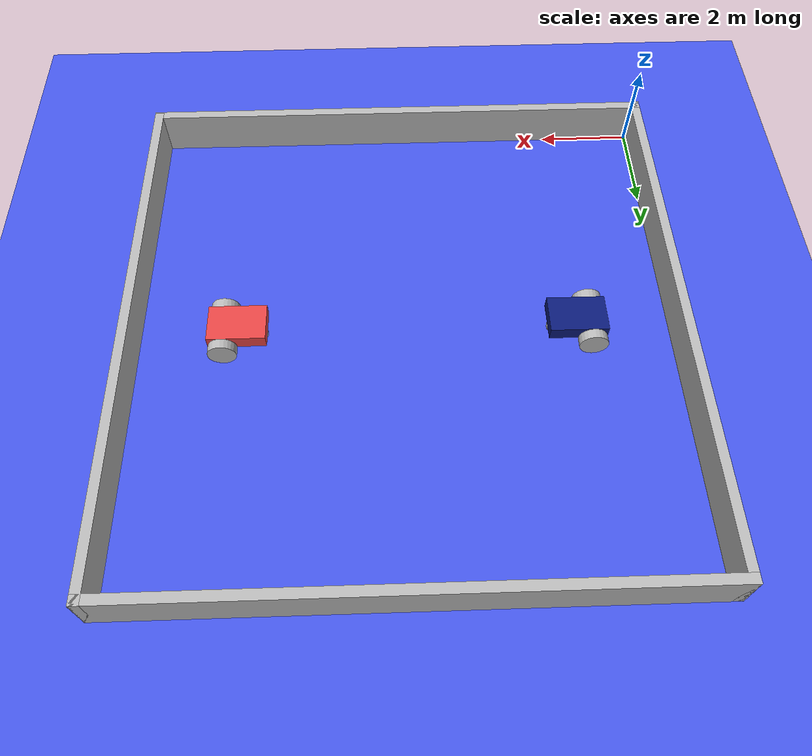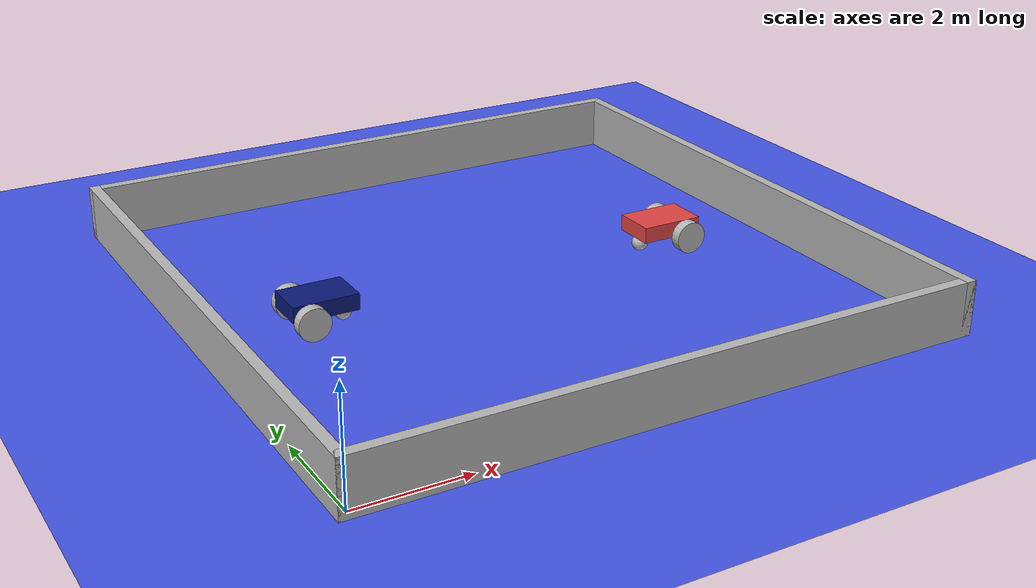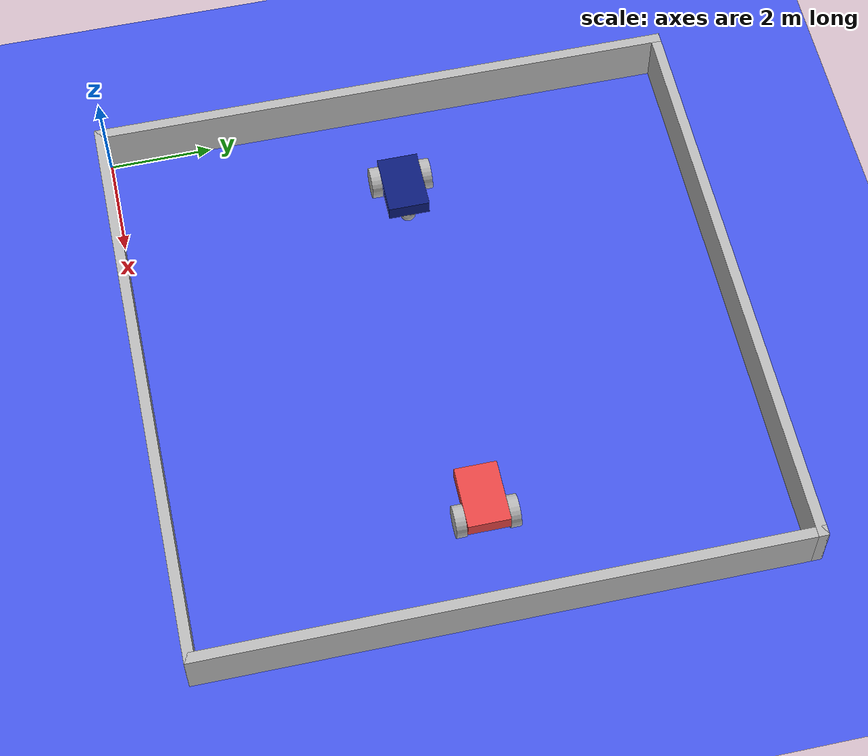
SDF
<?xml version="1.0" ?>
<sdf version="1.8">
  <world name="arena">
    <physics name="1ms" type="ignored">
      <max_step_size>0.001</max_step_size>
      <real_time_factor>1.0</real_time_factor>
    </physics>
    <plugin filename="ignition-gazebo-physics-system" name="ignition::gazebo::systems::Physics"/>
    <plugin filename="ignition-gazebo-user-commands-system" name="ignition::gazebo::systems::UserCommands"/>
    <plugin filename="ignition-gazebo-scene-broadcaster-system" name="ignition::gazebo::systems::SceneBroadcaster"/>
    <plugin filename="ignition-gazebo-contact-system" name="ignition::gazebo::systems::Contact"/>

    <light type="directional" name="sun">
      <cast_shadows>false</cast_shadows>
      <pose>0 0 10 0 0 0</pose>
      <diffuse>0.8 0.8 0.8 1</diffuse>
      <specular>0.2 0.2 0.2 1</specular>
      <direction>-0.5 0.1 -0.9</direction>
    </light>

    <model name="ground_plane">
      <static>true</static>
      <link name="link">
        <collision name="collision">
          <geometry><plane><normal>0 0 1</normal><size>40 40</size></plane></geometry>
        </collision>
        <visual name="visual">
          <geometry><plane><normal>0 0 1</normal><size>11.08 11.08</size></plane></geometry>
          <material><ambient>0.27 0.34 0.91 1</ambient><diffuse>0.27 0.34 0.91 1</diffuse></material>
        </visual>
      </link>
    </model>

    <!-- four walls around the 11.08 x 11.08 floor, centered at (5.54, 5.54) -->
    <model name="wall_south"><static>true</static><pose>5.54 -0.1 0.5 0 0 0</pose>
      <link name="link"><collision name="c"><geometry><box><size>11.48 0.2 1</size></box></geometry></collision>
      <visual name="v"><geometry><box><size>11.48 0.2 1</size></box></geometry></visual></link></model>
    <model name="wall_north"><static>true</static><pose>5.54 11.18 0.5 0 0 0</pose>
      <link name="link"><collision name="c"><geometry><box><size>11.48 0.2 1</size></box></geometry></collision>
      <visual name="v"><geometry><box><size>11.48 0.2 1</size></box></geometry></visual></link></model>
    <model name="wall_west"><static>true</static><pose>-0.1 5.54 0.5 0 0 0</pose>
      <link name="link"><collision name="c"><geometry><box><size>0.2 11.48 1</size></box></geometry></collision>
      <visual name="v"><geometry><box><size>0.2 11.48 1</size></box></geometry></visual></link></model>
    <model name="wall_east"><static>true</static><pose>11.18 5.54 0.5 0 0 0</pose>
      <link name="link"><collision name="c"><geometry><box><size>0.2 11.48 1</size></box></geometry></collision>
      <visual name="v"><geometry><box><size>0.2 11.48 1</size></box></geometry></visual></link></model>

    <!-- blue faces +x from (2, 5.54); red faces -x from (9, 5.54): they meet in the middle -->
    <model name="blue">
      <pose>2 5.54 0.3 0 0 0</pose>
      <link name="chassis">
        <pose>0 0 0.15 0 0 0</pose>
        <inertial><mass>5</mass><inertia><ixx>0.3</ixx><iyy>0.6</iyy><izz>0.8</izz><ixy>0</ixy><ixz>0</ixz><iyz>0</iyz></inertia></inertial>
        <collision name="chassis_collision"><geometry><box><size>1.2 0.8 0.3</size></box></geometry></collision>
        <visual name="chassis_visual"><geometry><box><size>1.2 0.8 0.3</size></box></geometry>
          <material><ambient>0.04 0.1 0.47 1</ambient><diffuse>0.04 0.1 0.47 1</diffuse></material></visual>
        <sensor name="bumper" type="contact">
          <contact><collision>chassis_collision</collision></contact>
          <topic>/contacts/blue</topic>
          <update_rate>10</update_rate>
          <always_on>true</always_on>
        </sensor>
      </link>
      <link name="left_wheel">
        <pose>-0.3 0.5 0 -1.5707 0 0</pose>
        <inertial><mass>1</mass><inertia><ixx>0.025</ixx><iyy>0.025</iyy><izz>0.045</izz><ixy>0</ixy><ixz>0</ixz><iyz>0</iyz></inertia></inertial>
        <collision name="collision"><geometry><cylinder><radius>0.3</radius><length>0.2</length></cylinder></geometry></collision>
        <visual name="visual"><geometry><cylinder><radius>0.3</radius><length>0.2</length></cylinder></geometry></visual>
      </link>
      <link name="right_wheel">
        <pose>-0.3 -0.5 0 -1.5707 0 0</pose>
        <inertial><mass>1</mass><inertia><ixx>0.025</ixx><iyy>0.025</iyy><izz>0.045</izz><ixy>0</ixy><ixz>0</ixz><iyz>0</iyz></inertia></inertial>
        <collision name="collision"><geometry><cylinder><radius>0.3</radius><length>0.2</length></cylinder></geometry></collision>
        <visual name="visual"><geometry><cylinder><radius>0.3</radius><length>0.2</length></cylinder></geometry></visual>
      </link>
      <link name="caster">
        <pose>0.45 0 -0.15 0 0 0</pose>
        <inertial><mass>0.5</mass><inertia><ixx>0.005</ixx><iyy>0.005</iyy><izz>0.005</izz><ixy>0</ixy><ixz>0</ixz><iyz>0</iyz></inertia></inertial>
        <collision name="collision"><geometry><sphere><radius>0.15</radius></sphere></geometry></collision>
        <visual name="visual"><geometry><sphere><radius>0.15</radius></sphere></geometry></visual>
      </link>
      <joint name="left_wheel_joint" type="revolute">
        <parent>chassis</parent><child>left_wheel</child>
        <axis><xyz>0 0 1</xyz><limit><lower>-1.79769e+308</lower><upper>1.79769e+308</upper></limit></axis>
      </joint>
      <joint name="right_wheel_joint" type="revolute">
        <parent>chassis</parent><child>right_wheel</child>
        <axis><xyz>0 0 1</xyz><limit><lower>-1.79769e+308</lower><upper>1.79769e+308</upper></limit></axis>
      </joint>
      <joint name="caster_joint" type="ball">
        <parent>chassis</parent><child>caster</child>
      </joint>
      <plugin filename="ignition-gazebo-diff-drive-system" name="ignition::gazebo::systems::DiffDrive">
        <left_joint>left_wheel_joint</left_joint>
        <right_joint>right_wheel_joint</right_joint>
        <wheel_separation>1.0</wheel_separation>
        <wheel_radius>0.3</wheel_radius>
        <odom_publish_frequency>5</odom_publish_frequency>
        <topic>/model/blue/cmd_vel</topic>
        <odom_topic>/model/blue/odometry</odom_topic>
      </plugin>
    </model>

    <model name="red">
      <pose>9 5.54 0.3 0 0 3.14159</pose>
      <link name="chassis">
        <pose>0 0 0.15 0 0 0</pose>
        <inertial><mass>5</mass><inertia><ixx>0.3</ixx><iyy>0.6</iyy><izz>0.8</izz><ixy>0</ixy><ixz>0</ixz><iyz>0</iyz></inertia></inertial>
        <collision name="chassis_collision"><geometry><box><size>1.2 0.8 0.3</size></box></geometry></collision>
        <visual name="chassis_visual"><geometry><box><size>1.2 0.8 0.3</size></box></geometry>
          <material><ambient>0.9 0.27 0.27 1</ambient><diffuse>0.9 0.27 0.27 1</diffuse></material></visual>
        <sensor name="bumper" type="contact">
          <contact><collision>chassis_collision</collision></contact>
          <topic>/contacts/red</topic>
          <update_rate>10</update_rate>
          <always_on>true</always_on>
        </sensor>
      </link>
      <link name="left_wheel">
        <pose>-0.3 0.5 0 -1.5707 0 0</pose>
        <inertial><mass>1</mass><inertia><ixx>0.025</ixx><iyy>0.025</iyy><izz>0.045</izz><ixy>0</ixy><ixz>0</ixz><iyz>0</iyz></inertia></inertial>
        <collision name="collision"><geometry><cylinder><radius>0.3</radius><length>0.2</length></cylinder></geometry></collision>
        <visual name="visual"><geometry><cylinder><radius>0.3</radius><length>0.2</length></cylinder></geometry></visual>
      </link>
      <link name="right_wheel">
        <pose>-0.3 -0.5 0 -1.5707 0 0</pose>
        <inertial><mass>1</mass><inertia><ixx>0.025</ixx><iyy>0.025</iyy><izz>0.045</izz><ixy>0</ixy><ixz>0</ixz><iyz>0</iyz></inertia></inertial>
        <collision name="collision"><geometry><cylinder><radius>0.3</radius><length>0.2</length></cylinder></geometry></collision>
        <visual name="visual"><geometry><cylinder><radius>0.3</radius><length>0.2</length></cylinder></geometry></visual>
      </link>
      <link name="caster">
        <pose>0.45 0 -0.15 0 0 0</pose>
        <inertial><mass>0.5</mass><inertia><ixx>0.005</ixx><iyy>0.005</iyy><izz>0.005</izz><ixy>0</ixy><ixz>0</ixz><iyz>0</iyz></inertia></inertial>
        <collision name="collision"><geometry><sphere><radius>0.15</radius></sphere></geometry></collision>
        <visual name="visual"><geometry><sphere><radius>0.15</radius></sphere></geometry></visual>
      </link>
      <joint name="left_wheel_joint" type="revolute">
        <parent>chassis</parent><child>left_wheel</child>
        <axis><xyz>0 0 1</xyz><limit><lower>-1.79769e+308</lower><upper>1.79769e+308</upper></limit></axis>
      </joint>
      <joint name="right_wheel_joint" type="revolute">
        <parent>chassis</parent><child>right_wheel</child>
        <axis><xyz>0 0 1</xyz><limit><lower>-1.79769e+308</lower><upper>1.79769e+308</upper></limit></axis>
      </joint>
      <joint name="caster_joint" type="ball">
        <parent>chassis</parent><child>caster</child>
      </joint>
      <plugin filename="ignition-gazebo-diff-drive-system" name="ignition::gazebo::systems::DiffDrive">
        <left_joint>left_wheel_joint</left_joint>
        <right_joint>right_wheel_joint</right_joint>
        <wheel_separation>1.0</wheel_separation>
        <wheel_radius>0.3</wheel_radius>
        <odom_publish_frequency>5</odom_publish_frequency>
        <topic>/model/red/cmd_vel</topic>
        <odom_topic>/model/red/odometry</odom_topic>
      </plugin>
    </model>
  </world>
</sdf>
